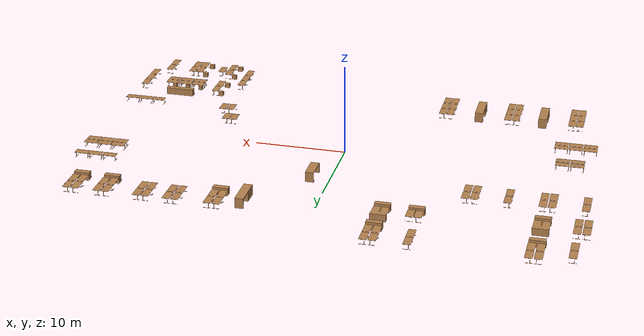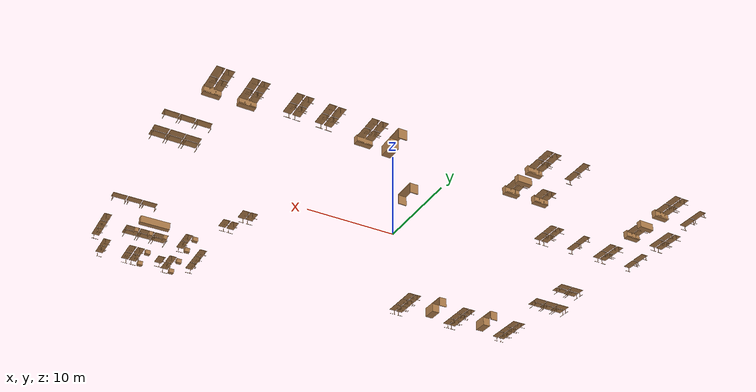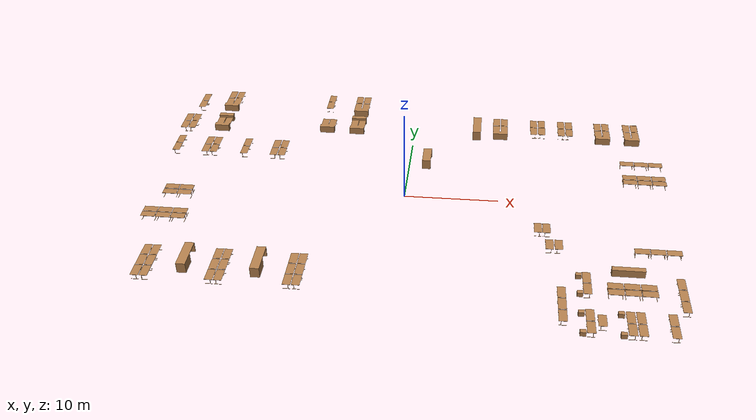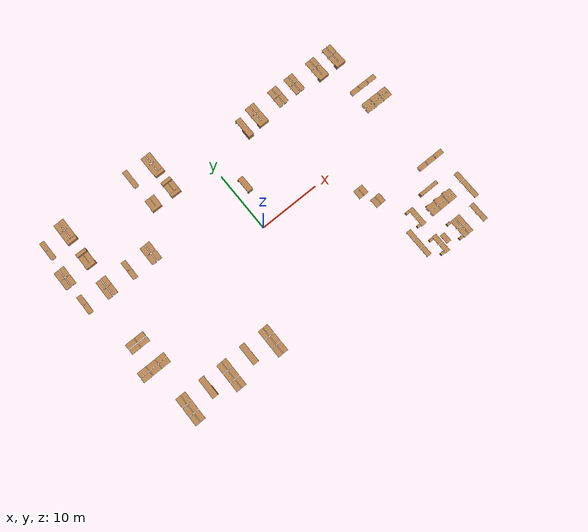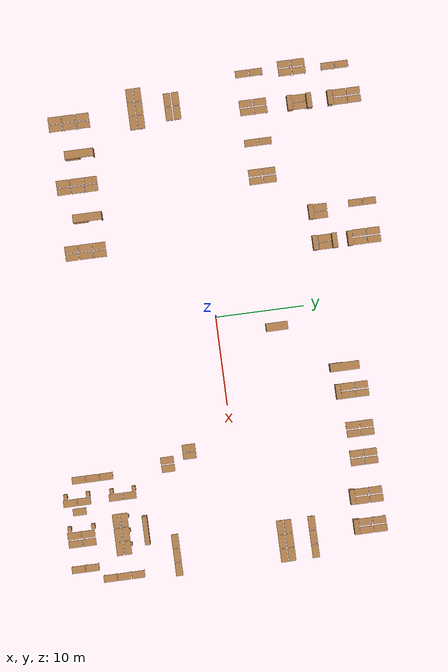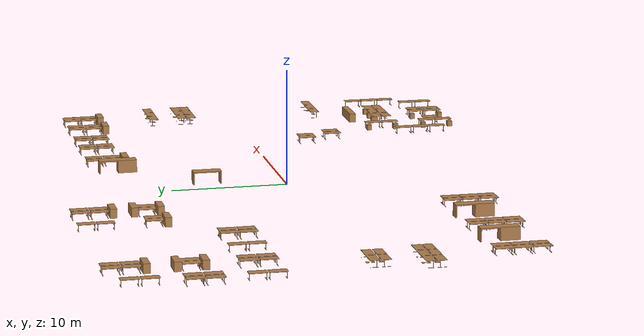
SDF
<?xml version="1.0"?>
<sdf version="1.6">

 <model name="SYV_office_desks">
   <link name="link_SYV_office_desks">
     <pose frame=''>0 0 0 0 0 0</pose>
     <gravity>0</gravity>
     <self_collide>0</self_collide>
     <kinematic>0</kinematic>
     <visual name="visual">
       <pose frame=''>0 0 0 0 0 0</pose>
       <meta>
        <layer>1</layer>
       </meta>
       <geometry>
         <mesh><uri>model://SYV_office_desks/meshes/woodfurn.dae</uri></mesh>
       </geometry>
       <material>
        <lighting>1</lighting>
        <script>
          <uri>file://media/materials/scripts/gazebo.material</uri>
          <name>Gazebo/Wood</name>
        </script>
       </material>
       <cast_shadows>1</cast_shadows>
       <transparency>0</transparency>
      </visual>
      <collision name="collision">
       <laser_retro>1.0</laser_retro>
       <max_contacts>10</max_contacts>
       <pose frame=''>0 0 0 0 0 0</pose>
       <geometry>
           <mesh>
             <uri>model://SYV_office_desks/meshes/woodfurn.dae</uri>
           </mesh>
       </geometry>
      </collision>
   </link>
   <static>1</static>
 </model>
</sdf>
